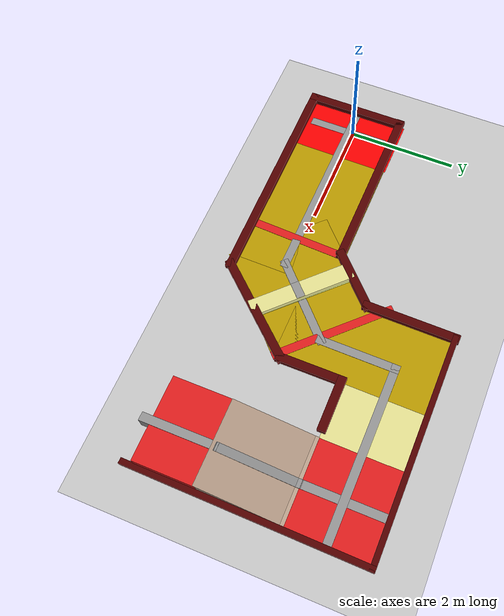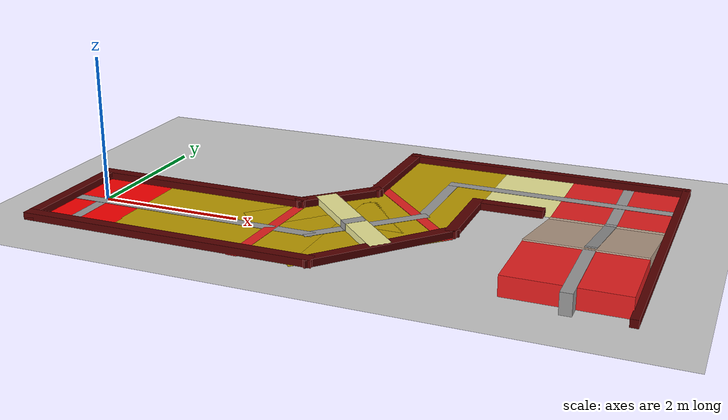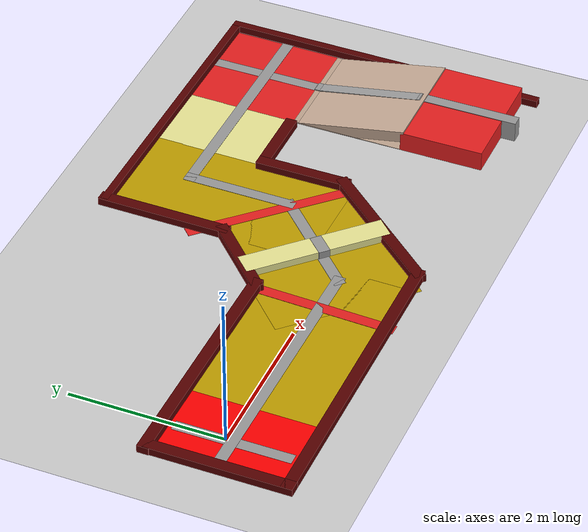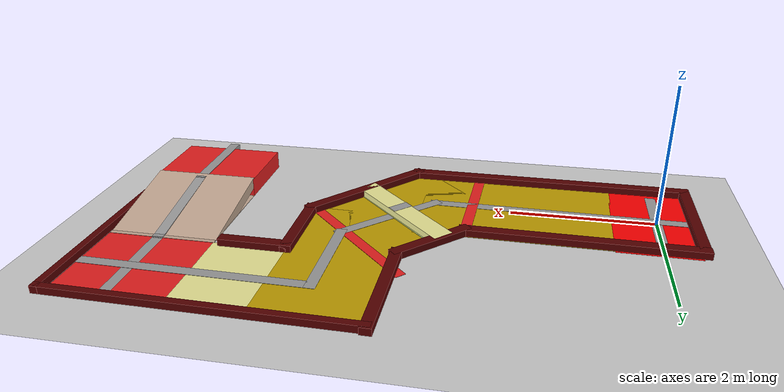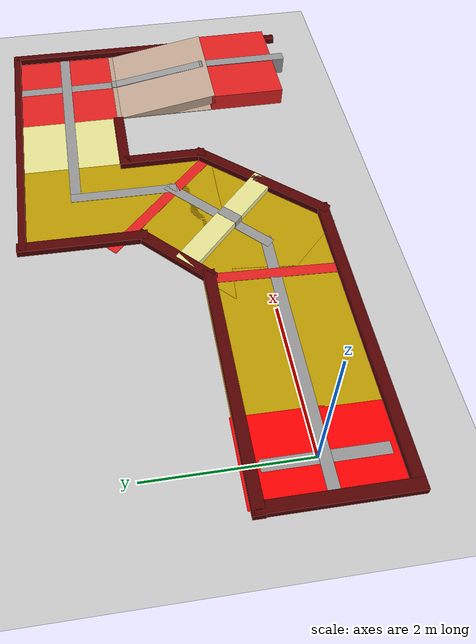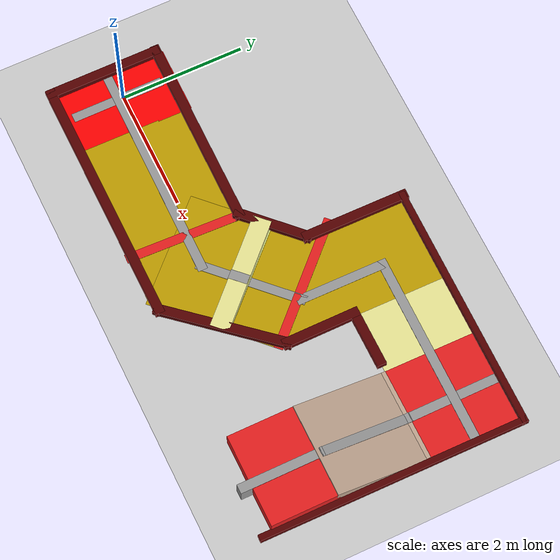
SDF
<sdf version="1.6">
 <world name="default">
  <light name="sun" type="directional">
   <pose>0 0 10 0 -0 0</pose>
   <diffuse>0.8 0.8 0.8 1</diffuse>
   <specular>0.1 0.1 0.1 1</specular>
   <attenuation>
    <range>1000</range>
    <constant>0.9</constant>
    <linear>0.01</linear>
    <quadratic>0.001</quadratic>
   </attenuation>
   <direction>-0.5 0.5 -1</direction>
  </light>
  <model name="ground_plane">
   <static>1</static>
   <link name="link">
    <collision name="collision">
     <geometry><plane><normal>0 0 1</normal><size>100 100</size></plane></geometry>
     <surface><friction><ode><mu>100</mu><mu2>50</mu2></ode></friction></surface>
    </collision>
    <visual name="visual">
     <cast_shadows>0</cast_shadows>
     <geometry><plane><normal>0 0 1</normal><size>100 100</size></plane></geometry>
     <material>
      <script><uri>file://media/materials/scripts/gazebo.material</uri><name>Gazebo/Grey</name></script>
     </material>
    </visual>
   </link>
  </model>
  <gravity>0 0 -9.8</gravity>
  <magnetic_field>6e-06 2.3e-05 -4.2e-05</magnetic_field>
  <atmosphere type="adiabatic"/>
  <physics name="default_physics" default="0" type="ode">
   <max_step_size>0.001</max_step_size>
   <real_time_factor>1</real_time_factor>
   <real_time_update_rate>1000</real_time_update_rate>
  </physics>
  <scene><ambient>0.4 0.4 0.4 1</ambient><background>0.7 0.7 0.7 1</background><shadows>1</shadows></scene>
  <spherical_coordinates>
   <surface_model>EARTH_WGS84</surface_model>
   <latitude_deg>0</latitude_deg>
   <longitude_deg>0</longitude_deg>
   <elevation>0</elevation>
   <heading_deg>0</heading_deg>
  </spherical_coordinates>
  <model name="MR2way">
   <pose>3.42393 1.03579 0 0 0 -1.58007</pose>
   <link name="Wall_0">
    <collision name="Wall_0_Collision">
     <geometry><box><size>4.3 0.1 0.101</size></box></geometry>
     <pose>0 0 0.0505 0 -0 0</pose>
    </collision>
    <visual name="Wall_0_Visual">
     <pose>0 0 0.0505 0 -0 0</pose>
     <geometry><box><size>4.3 0.1 0.101</size></box></geometry>
     <material>
      <script><uri>file://media/materials/scripts/gazebo.material</uri><name>Gazebo/Grey</name></script>
      <ambient>0.333333 0 0 1</ambient>
     </material>
    </visual>
    <pose>0.0125 3.9515 0 0 -0 0</pose>
   </link>
   <link name="Wall_11">
    <collision name="Wall_11_Collision">
     <geometry><box><size>1.45 1 0.001</size></box></geometry>
     <pose>0 0 0.0005 0 -0 0</pose>
    </collision>
    <visual name="Wall_11_Visual">
     <pose>0 0 0.0005 0 -0 0</pose>
     <geometry><box><size>1.45 1 0.001</size></box></geometry>
     <material>
      <script><uri>file://media/materials/scripts/gazebo.material</uri><name>Gazebo/Grey</name></script>
      <ambient>0.917647 0.901961 0.584314 1</ambient>
     </material>
    </visual>
    <pose>-1.3185 1.8985 0 0 -0 0</pose>
   </link>
   <link name="Wall_13">
    <collision name="Wall_13_Collision">
     <geometry><box><size>2.7 1.5 0.001</size></box></geometry>
     <pose>0 0 0.0005 0 -0 0</pose>
    </collision>
    <visual name="Wall_13_Visual">
     <pose>0 0 0.0005 0 -0 0</pose>
     <geometry><box><size>2.7 1.5 0.001</size></box></geometry>
     <material>
      <script><uri>file://media/materials/scripts/gazebo.material</uri><name>Gazebo/Grey</name></script>
      <ambient>0.74902 0.615686 0 1</ambient>
     </material>
    </visual>
    <pose>-0.688656 0.6565 0 0 -0 3.14159</pose>
   </link>
   <link name="Wall_15">
    <collision name="Wall_15_Collision">
     <geometry><box><size>2.12062 1.9 0.001</size></box></geometry>
     <pose>0 0 0.0005 0 -0 0</pose>
    </collision>
    <visual name="Wall_15_Visual">
     <pose>0 0 0.0005 0 -0 0</pose>
     <geometry><box><size>2.12062 1.9 0.001</size></box></geometry>
     <material>
      <script><uri>file://media/materials/scripts/gazebo.material</uri><name>Gazebo/Grey</name></script>
      <ambient>0.74902 0.615686 0 1</ambient>
     </material>
    </visual>
    <pose>0.73611 -0.0095 0 0 0 -0.785398</pose>
   </link>
   <link name="Wall_21">
    <collision name="Wall_21_Collision">
     <geometry><box><size>2.7 1.9 0.001</size></box></geometry>
     <pose>0 0 0.0005 0 -0 0</pose>
    </collision>
    <visual name="Wall_21_Visual">
     <pose>0 0 0.0005 0 -0 0</pose>
     <geometry><box><size>2.7 1.9 0.001</size></box></geometry>
     <material>
      <script><uri>file://media/materials/scripts/gazebo.material</uri><name>Gazebo/Grey</name></script>
      <ambient>0.74902 0.615686 0 1</ambient>
     </material>
    </visual>
    <pose>1.15609 -1.47421 0 0 0 -1.5708</pose>
   </link>
   <link name="Wall_23">
    <collision name="Wall_23_Collision">
     <geometry><box><size>1.9 1.1 0.001</size></box></geometry>
     <pose>0 0 0.0005 0 -0 0</pose>
    </collision>
    <visual name="Wall_23_Visual">
     <pose>0 0 0.0005 0 -0 0</pose>
     <geometry><box><size>1.9 1.1 0.001</size></box></geometry>
     <material>
      <script><uri>file://media/materials/scripts/gazebo.material</uri><name>Gazebo/Grey</name></script>
      <ambient>1 0 0 1</ambient>
     </material>
    </visual>
    <pose>1.1355 -3.3545 0 0 -0 3.14159</pose>
   </link>
   <link name="Wall_26">
    <collision name="Wall_26_Collision">
     <geometry><box><size>1.89948 0.3 0.01</size></box></geometry>
     <pose>0 0 0.005 0 -0 0</pose>
    </collision>
    <visual name="Wall_26_Visual">
     <pose>0 0 0.005 0 -0 0</pose>
     <geometry><box><size>1.89948 0.3 0.01</size></box></geometry>
     <material>
      <script><uri>file://media/materials/scripts/gazebo.material</uri><name>Gazebo/Grey</name></script>
      <ambient>0.917647 0.980392 0.584314 1</ambient>
     </material>
    </visual>
    <pose>0.658481 0.09087 0 0 -0 0.785398</pose>
   </link>
   <link name="Wall_28">
    <collision name="Wall_28_Collision">
     <geometry><box><size>3.25 0.15 0.005</size></box></geometry>
     <pose>0 0 0.0025 0 -0 0</pose>
    </collision>
    <visual name="Wall_28_Visual">
     <pose>0 0 0.0025 0 -0 0</pose>
     <geometry><box><size>3.25 0.15 0.005</size></box></geometry>
     <material>
      <script><uri>file://media/materials/scripts/gazebo.material</uri><name>Gazebo/Grey</name></script>
      <ambient>1 1 1 1</ambient>
     </material>
    </visual>
    <pose>-1.3295 2.3745 0 0 0 -1.5708</pose>
   </link>
   <link name="Wall_30">
    <collision name="Wall_30_Collision">
     <geometry><box><size>1.5 0.15 0.005</size></box></geometry>
     <pose>0 0 0.0025 0 -0 0</pose>
    </collision>
    <visual name="Wall_30_Visual">
     <pose>0 0 0.0025 0 -0 0</pose>
     <geometry><box><size>1.5 0.15 0.005</size></box></geometry>
     <material>
      <script><uri>file://media/materials/scripts/gazebo.material</uri><name>Gazebo/Grey</name></script>
      <ambient>1 1 1 1</ambient>
     </material>
    </visual>
    <pose>-0.6545 0.8245 0 0 -0 0</pose>
   </link>
   <link name="Wall_31">
    <collision name="Wall_31_Collision">
     <geometry><box><size>1.75 0.15 0.005</size></box></geometry>
     <pose>0 0 0.0025 0 -0 0</pose>
    </collision>
    <visual name="Wall_31_Visual">
     <pose>0 0 0.0025 0 -0 0</pose>
     <geometry><box><size>1.75 0.15 0.005</size></box></geometry>
     <material>
      <script><uri>file://media/materials/scripts/gazebo.material</uri><name>Gazebo/Grey</name></script>
      <ambient>1 1 1 1</ambient>
     </material>
    </visual>
    <pose>0.586 0.259 0 0 0 -0.785398</pose>
   </link>
   <link name="Wall_32">
    <collision name="Wall_32_Collision">
     <geometry><box><size>3.75 0.15 0.005</size></box></geometry>
     <pose>0 0 0.0025 0 -0 0</pose>
    </collision>
    <visual name="Wall_32_Visual">
     <pose>0 0 0.0025 0 -0 0</pose>
     <geometry><box><size>3.75 0.15 0.005</size></box></geometry>
     <material>
      <script><uri>file://media/materials/scripts/gazebo.material</uri><name>Gazebo/Grey</name></script>
      <ambient>1 1 1 1</ambient>
     </material>
    </visual>
    <pose>1.1515 -2.1065 0 0 0 -1.5708</pose>
   </link>
   <link name="Wall_34">
    <collision name="Wall_34_Collision">
     <geometry><box><size>2.25 0.15 0.005</size></box></geometry>
     <pose>0 0 0.0025 0 -0 0</pose>
    </collision>
    <visual name="Wall_34_Visual">
     <pose>0 0 0.0025 0 -0 0</pose>
     <geometry><box><size>2.25 0.15 0.005</size></box></geometry>
     <material>
      <script><uri>file://media/materials/scripts/gazebo.material</uri><name>Gazebo/Grey</name></script>
      <ambient>0.901961 0.121569 0.121569 1</ambient>
     </material>
    </visual>
    <pose>-0.124 0.602 0 0 -0 0.785398</pose>
   </link>
   <link name="Wall_37">
    <collision name="Wall_37_Collision">
     <geometry><box><size>1.91295 0.15 0.005</size></box></geometry>
     <pose>0 0 0.0025 0 -0 0</pose>
    </collision>
    <visual name="Wall_37_Visual">
     <pose>0 0 0.0025 0 -0 0</pose>
     <geometry><box><size>1.91295 0.15 0.005</size></box></geometry>
     <material>
      <script><uri>file://media/materials/scripts/gazebo.material</uri><name>Gazebo/Grey</name></script>
      <ambient>0.901961 0.121569 0.121569 1</ambient>
     </material>
    </visual>
    <pose>1.1715 -0.8525 0 0 0 -0.029503</pose>
   </link>
   <link name="Wall_39">
    <collision name="Wall_39_Collision">
     <geometry><box><size>1.75 0.15 0.1</size></box></geometry>
     <pose>0 0 0.05 0 -0 0</pose>
    </collision>
    <visual name="Wall_39_Visual">
     <pose>0 0 0.05 0 -0 0</pose>
     <geometry><box><size>1.75 0.15 0.1</size></box></geometry>
     <material>
      <script><uri>file://media/materials/scripts/gazebo.material</uri><name>Gazebo/Grey</name></script>
      <ambient>0.333333 0 0 1</ambient>
     </material>
    </visual>
    <pose>-1.2875 -0.0485 0 0 -0 0</pose>
   </link>
   <link name="Wall_40">
    <collision name="Wall_40_Collision">
     <geometry><box><size>1.25 0.15 0.1</size></box></geometry>
     <pose>0 0 0.05 0 -0 0</pose>
    </collision>
    <visual name="Wall_40_Visual">
     <pose>0 0 0.05 0 -0 0</pose>
     <geometry><box><size>1.25 0.15 0.1</size></box></geometry>
     <material>
      <script><uri>file://media/materials/scripts/gazebo.material</uri><name>Gazebo/Grey</name></script>
      <ambient>0.333333 0 0 1</ambient>
     </material>
    </visual>
    <pose>-0.0985 -0.4375 0 0 0 -0.785398</pose>
   </link>
   <link name="Wall_41">
    <collision name="Wall_41_Collision">
     <geometry><box><size>3.25 0.15 0.1</size></box></geometry>
     <pose>0 0 0.05 0 -0 0</pose>
    </collision>
    <visual name="Wall_41_Visual">
     <pose>0 0 0.05 0 -0 0</pose>
     <geometry><box><size>3.25 0.15 0.1</size></box></geometry>
     <material>
      <script><uri>file://media/materials/scripts/gazebo.material</uri><name>Gazebo/Grey</name></script>
      <ambient>0.333333 0 0 1</ambient>
     </material>
    </visual>
    <pose>0.2905 -2.3765 0 0 0 -1.5708</pose>
   </link>
   <link name="Wall_5">
    <collision name="Wall_5_Collision">
     <geometry><box><size>4.1 0.1 0.101</size></box></geometry>
     <pose>0 0 0.0505 0 -0 0</pose>
    </collision>
    <visual name="Wall_5_Visual">
     <pose>0 0 0.0505 0 -0 0</pose>
     <geometry><box><size>4.1 0.1 0.101</size></box></geometry>
     <material>
      <script><uri>file://media/materials/scripts/gazebo.material</uri><name>Gazebo/Grey</name></script>
      <ambient>0.333333 0 0 1</ambient>
     </material>
    </visual>
    <pose>-2.0875 1.9515 0 0 0 -1.5708</pose>
   </link>
   <link name="Wall_9">
    <collision name="Wall_9_Collision">
     <geometry><box><size>1.5 1.45 0.001</size></box></geometry>
     <pose>0 0 0.0005 0 -0 0</pose>
    </collision>
    <visual name="Wall_9_Visual">
     <pose>0 0 0.0005 0 -0 0</pose>
     <geometry><box><size>1.5 1.45 0.001</size></box></geometry>
     <material>
      <script><uri>file://media/materials/scripts/gazebo.material</uri><name>Gazebo/Grey</name></script>
      <ambient>0.901961 0.121569 0.121569 1</ambient>
     </material>
    </visual>
    <pose>-1.3235 3.1435 0 0 -0 1.5708</pose>
   </link>
   <static>1</static>
  </model>
  <model name="MR2area">
   <pose>3.06069 1.00816 0 0 -0 0</pose>
   <link name="Wall_0">
    <collision name="Wall_0_Collision">
     <geometry><box><size>1.9 0.15 0.1</size></box></geometry>
     <pose>0 0 0.05 0 -0 0</pose>
    </collision>
    <visual name="Wall_0_Visual">
     <pose>0 0 0.05 0 -0 0</pose>
     <geometry><box><size>1.9 0.15 0.1</size></box></geometry>
     <material>
      <script><uri>file://media/materials/scripts/gazebo.material</uri><name>Gazebo/Grey</name></script>
      <ambient>0.333333 0 0 1</ambient>
     </material>
    </visual>
    <pose>-3.55775 -1.12559 0 0 0 -1.5708</pose>
   </link>
   <link name="Wall_12">
    <collision name="Wall_12_Collision">
     <geometry><box><size>1.249 0.15 0.1</size></box></geometry>
     <pose>0 0 0.05 0 -0 0</pose>
    </collision>
    <visual name="Wall_12_Visual">
     <pose>0 0 0.05 0 -0 0</pose>
     <geometry><box><size>1.249 0.15 0.1</size></box></geometry>
     <material>
      <script><uri>file://media/materials/scripts/gazebo.material</uri><name>Gazebo/Grey</name></script>
      <ambient>0.333333 0 0 1</ambient>
     </material>
    </visual>
    <pose>1.75425 0.045913 0 0 -0 1.5708</pose>
   </link>
   <link name="Wall_13">
    <collision name="Wall_13_Collision">
     <geometry><box><size>1 0.15 0.1</size></box></geometry>
     <pose>0 0 0.05 0 -0 0</pose>
    </collision>
    <visual name="Wall_13_Visual">
     <pose>0 0 0.05 0 -0 0</pose>
     <geometry><box><size>1 0.15 0.1</size></box></geometry>
     <material>
      <script><uri>file://media/materials/scripts/gazebo.material</uri><name>Gazebo/Grey</name></script>
      <ambient>0.333333 0 0 1</ambient>
     </material>
    </visual>
    <pose>2.17925 0.595413 0 0 -0 0</pose>
   </link>
   <link name="Wall_15">
    <collision name="Wall_15_Collision">
     <geometry><box><size>0.3 0.15 0.1</size></box></geometry>
     <pose>0 0 0.052 0 -0 0</pose>
    </collision>
    <visual name="Wall_15_Visual">
     <pose>0 0 0.052 0 -0 0</pose>
     <geometry><box><size>0.3 0.15 0.1</size></box></geometry>
     <material>
      <script><uri>file://media/materials/scripts/gazebo.material</uri><name>Gazebo/Grey</name></script>
      <ambient>1 1 1 1</ambient>
     </material>
    </visual>
    <pose>0.492717 -0.70112 0 0 0 -2.35619</pose>
   </link>
   <link name="Wall_17">
    <collision name="Wall_17_Collision">
     <geometry><box><size>1.5 0.15 0.002</size></box></geometry>
     <pose>0 0 0.001 0 -0 0</pose>
    </collision>
    <visual name="Wall_17_Visual">
     <pose>0 0 0.001 0 -0 0</pose>
     <geometry><box><size>1.5 0.15 0.002</size></box></geometry>
     <material>
      <script><uri>file://media/materials/scripts/gazebo.material</uri><name>Gazebo/Grey</name></script>
      <ambient>1 1 1 1</ambient>
     </material>
    </visual>
    <pose>-3.06575 -1.10459 0 0 0 -1.5708</pose>
   </link>
   <link name="Wall_19">
    <collision name="Wall_19_Collision">
     <geometry><box><size>1.5 0.15 0.002</size></box></geometry>
     <pose>0 0 0.001 0 -0 0</pose>
    </collision>
    <visual name="Wall_19_Visual">
     <pose>0 0 0.001 0 -0 0</pose>
     <geometry><box><size>1.5 0.15 0.002</size></box></geometry>
     <material>
      <script><uri>file://media/materials/scripts/gazebo.material</uri><name>Gazebo/Grey</name></script>
      <ambient>1 1 1 1</ambient>
     </material>
    </visual>
    <pose>3.55775 1.35641 0 0 0 -1.5708</pose>
   </link>
   <link name="Wall_2">
    <collision name="Wall_2_Collision">
     <geometry><box><size>1.9 0.3 0.1</size></box></geometry>
     <pose>0 0 0.05 0 -0 0</pose>
    </collision>
    <visual name="Wall_2_Visual">
     <pose>0 0 0.05 0 -0 0</pose>
     <geometry><box><size>1.9 0.3 0.1</size></box></geometry>
     <material>
      <script><uri>file://media/materials/scripts/gazebo.material</uri><name>Gazebo/Grey</name></script>
      <ambient>0.917647 0.901961 0.584314 1</ambient>
     </material>
    </visual>
    <pose>0.447935 -0.646272 0 0 0 -0.785398</pose>
   </link>
   <link name="Wall_4">
    <collision name="Wall_4_Collision">
     <geometry><box><size>4.154 0.15 0.1</size></box></geometry>
     <pose>0 0 0.05 0 -0 0</pose>
    </collision>
    <visual name="Wall_4_Visual">
     <pose>0 0 0.05 0 -0 0</pose>
     <geometry><box><size>4.154 0.15 0.1</size></box></geometry>
     <material>
      <script><uri>file://media/materials/scripts/gazebo.material</uri><name>Gazebo/Grey</name></script>
      <ambient>0.333333 0 0 1</ambient>
     </material>
    </visual>
    <pose>-1.55575 -2.00059 0 0 -0 0</pose>
   </link>
   <link name="Wall_5">
    <collision name="Wall_5_Collision">
     <geometry><box><size>2.13793 0.15 0.1</size></box></geometry>
     <pose>0 0 0.05 0 -0 0</pose>
    </collision>
    <visual name="Wall_5_Visual">
     <pose>0 0 0.05 0 -0 0</pose>
     <geometry><box><size>2.13793 0.15 0.1</size></box></geometry>
     <material>
      <script><uri>file://media/materials/scripts/gazebo.material</uri><name>Gazebo/Grey</name></script>
      <ambient>0.333333 0 0 1</ambient>
     </material>
    </visual>
    <pose>1.10025 -1.25209 0 0 -0 0.852676</pose>
   </link>
   <static>1</static>
  </model>
  <model name="mountion">
   <pose>7.31794 0.338505 0.058327 0 -1.57064 0</pose>
   <link name="Wall_42">
    <collision name="Wall_42_Collision">
     <geometry><box><size>1.099 0.4 1.5</size></box></geometry>
     <pose>0 0 0.75 0 -0 0</pose>
    </collision>
    <visual name="Wall_42_Visual">
     <pose>0 0 0.75 0 -0 0</pose>
     <geometry><box><size>1.099 0.4 1.5</size></box></geometry>
     <material>
      <script><uri>file://media/materials/scripts/gazebo.material</uri><name>Gazebo/Grey</name></script>
      <ambient>0.901961 0.121569 0.121569 1</ambient>
     </material>
    </visual>
    <pose>-0.0035 -0.740259 0 0 0 -1.5708</pose>
   </link>
   <link name="Wall_49">
    <collision name="Wall_49_Collision">
     <geometry><box><size>1.49989 0.15 1.5</size></box></geometry>
     <pose>0 0 0.75 0 -0 0</pose>
    </collision>
    <visual name="Wall_49_Visual">
     <pose>0 0 0.75 0 -0 0</pose>
     <geometry><box><size>1.49989 0.15 1.5</size></box></geometry>
     <material>
      <script><uri>file://media/materials/scripts/gazebo.material</uri><name>Gazebo/Grey</name></script>
      <ambient>0.756863 0.65098 0.568627 1</ambient>
     </material>
    </visual>
    <pose>-0.1325 0.527241 0 0 0 -1.57672</pose>
   </link>
   <link name="Wall_52">
    <collision name="Wall_52_Collision">
     <geometry><box><size>1.54685 0.15 1.5</size></box></geometry>
     <pose>0 0 0.75 0 -0 0</pose>
    </collision>
    <visual name="Wall_52_Visual">
     <pose>0 0 0.75 0 -0 0</pose>
     <geometry><box><size>1.54685 0.15 1.5</size></box></geometry>
     <material>
      <script><uri>file://media/materials/scripts/gazebo.material</uri><name>Gazebo/Grey</name></script>
      <ambient>0.756863 0.65098 0.568627 1</ambient>
     </material>
    </visual>
    <pose>0 0.515741 0 0 -0 1.75584</pose>
   </link>
   <static>1</static>
  </model>
  <model name="mountionline_0">
   <pose>6.69649 0.247308 0.06011 0 -1.57013 0</pose>
   <link name="Wall_54">
    <collision name="Wall_54_Collision">
     <geometry><box><size>1.35029 0.4 0.15</size></box></geometry>
     <pose>0 0 0.075 0 -0 0</pose>
    </collision>
    <visual name="Wall_54_Visual">
     <pose>0 0 0.075 0 -0 0</pose>
     <geometry><box><size>1.35029 0.4 0.15</size></box></geometry>
     <material>
      <script><uri>file://media/materials/scripts/gazebo.material</uri><name>Gazebo/Grey</name></script>
      <ambient>1 1 1 1</ambient>
     </material>
    </visual>
    <pose>0.0035 -0.709951 0 0 0 -1.5708</pose>
   </link>
   <link name="Wall_59">
    <collision name="Wall_59_Collision">
     <geometry><box><size>1.48288 0.15 0.15</size></box></geometry>
     <pose>0 0 0.075 0 -0 0</pose>
    </collision>
    <visual name="Wall_59_Visual">
     <pose>0 0 0.075 0 -0 0</pose>
     <geometry><box><size>1.48288 0.15 0.15</size></box></geometry>
     <material>
      <script><uri>file://media/materials/scripts/gazebo.material</uri><name>Gazebo/Grey</name></script>
      <ambient>1 1 1 1</ambient>
     </material>
    </visual>
    <pose>0 0.642049 0 0 -0 1.74803</pose>
   </link>
   <link name="Wall_61">
    <collision name="Wall_61_Collision">
     <geometry><box><size>1.5 0.15 0.15</size></box></geometry>
     <pose>0 0 0.075 0 -0 0</pose>
    </collision>
    <visual name="Wall_61_Visual">
     <pose>0 0 0.075 0 -0 0</pose>
     <geometry><box><size>1.5 0.15 0.15</size></box></geometry>
     <material>
      <script><uri>file://media/materials/scripts/gazebo.material</uri><name>Gazebo/Grey</name></script>
      <ambient>1 1 1 1</ambient>
     </material>
    </visual>
    <pose>-0.1175 0.623049 0 0 0 -1.5708</pose>
   </link>
   <static>1</static>
  </model>
 </world>
</sdf>
